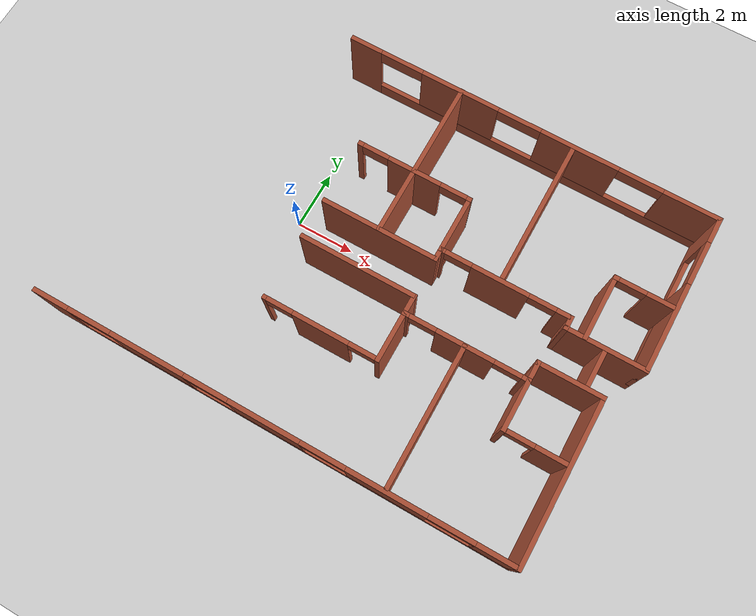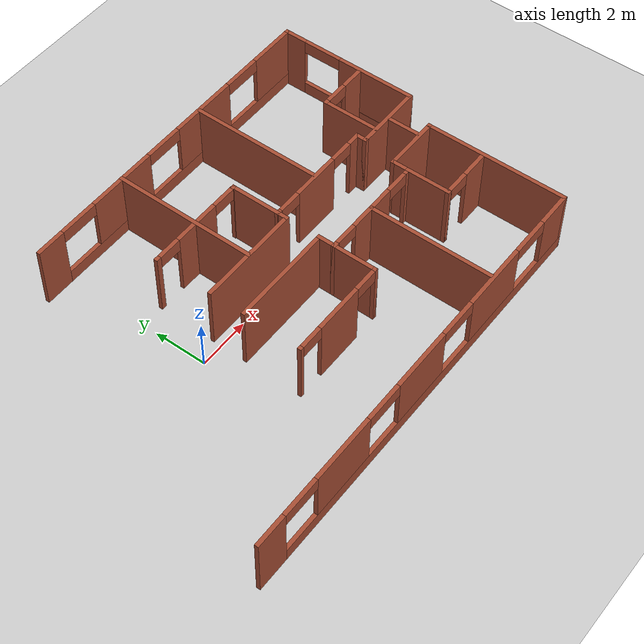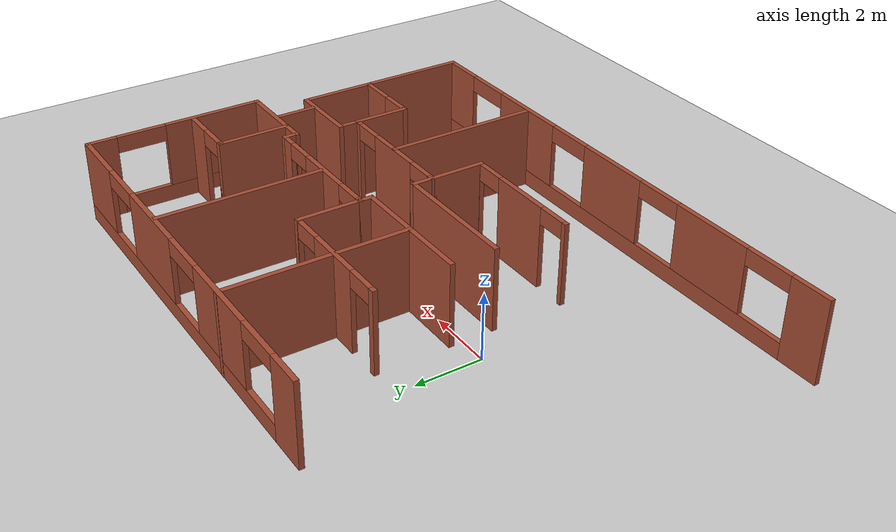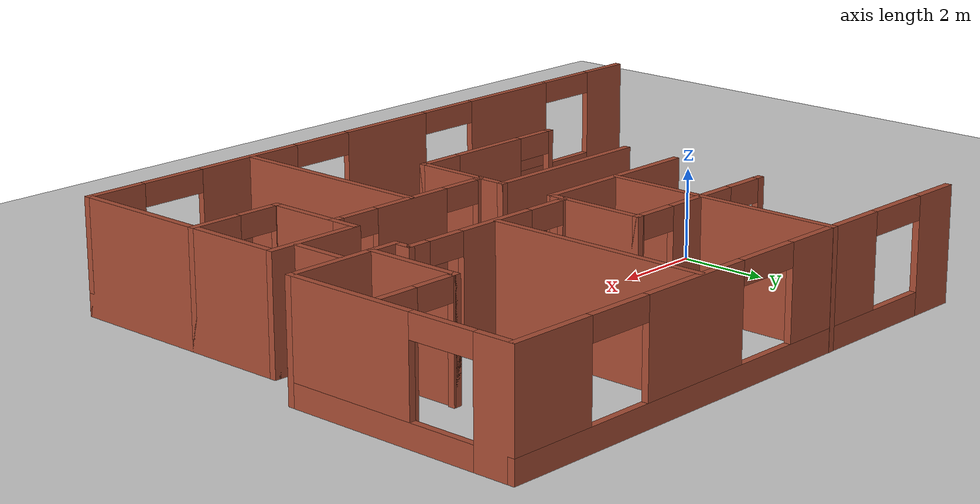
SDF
<sdf version="1.7">
 <world name="default">
  <model name="ground_plane">
   <static>1</static>
   <link name="link">
    <collision name="collision">
     <geometry><plane><normal>0 0 1</normal><size>100 100</size></plane></geometry>
     <surface><friction><ode><mu>100</mu><mu2>50</mu2></ode></friction></surface>
    </collision>
    <visual name="visual">
     <cast_shadows>0</cast_shadows>
     <geometry><plane><normal>0 0 1</normal><size>100 100</size></plane></geometry>
     <material>
      <script><uri>file://media/materials/scripts/gazebo.material</uri><name>Gazebo/Grey</name></script>
     </material>
    </visual>
   </link>
  </model>
  <model name="Apartments2">
   <pose>-0.710579 -0.305207 0 0 -0 0</pose>
   <link name="Wall_100">
    <collision name="Wall_100_Collision">
     <geometry><box><size>1.25 0.15 2.5</size></box></geometry>
     <pose>0 0 1.25 0 -0 0</pose>
    </collision>
    <visual name="Wall_100_Visual">
     <pose>0 0 1.25 0 -0 0</pose>
     <geometry><box><size>1.25 0.15 2.5</size></box></geometry>
     <material>
      <script><uri>file://media/materials/scripts/gazebo.material</uri><name>Gazebo/Bricks</name></script>
      <ambient>1 1 1 1</ambient>
     </material>
     <meta><layer>0</layer></meta>
    </visual>
    <pose>11.1408 -0.014942 0 0 -0 1.5708</pose>
   </link>
   <link name="Wall_17">
    <pose>3.65523 -6.01693 0 0 -0 0</pose>
    <visual name="Wall_17_Visual_0">
     <pose>-7.50207 0 1.25 0 -0 0</pose>
     <geometry><box><size>1.24587 0.15 2.5</size></box></geometry>
     <material>
      <script><uri>file://media/materials/scripts/gazebo.material</uri><name>Gazebo/Bricks</name></script>
      <ambient>1 1 1 1</ambient>
     </material>
     <meta><layer>0</layer></meta>
    </visual>
    <collision name="Wall_17_Collision_0">
     <geometry><box><size>1.24587 0.15 2.5</size></box></geometry>
     <pose>-7.50207 0 1.25 0 -0 0</pose>
    </collision>
    <visual name="Wall_17_Visual_1">
     <pose>0.622932 0 0.25 0 -0 0</pose>
     <geometry><box><size>15.0041 0.15 0.5</size></box></geometry>
     <material>
      <script><uri>file://media/materials/scripts/gazebo.material</uri><name>Gazebo/Bricks</name></script>
      <ambient>1 1 1 1</ambient>
     </material>
     <meta><layer>0</layer></meta>
    </visual>
    <collision name="Wall_17_Collision_1">
     <geometry><box><size>15.0041 0.15 0.5</size></box></geometry>
     <pose>0.622932 0 0.25 0 -0 0</pose>
    </collision>
    <visual name="Wall_17_Visual_2">
     <pose>-4.09785 0 1.5 0 -0 0</pose>
     <geometry><box><size>2.56257 0.15 2</size></box></geometry>
     <material>
      <script><uri>file://media/materials/scripts/gazebo.material</uri><name>Gazebo/Bricks</name></script>
      <ambient>1 1 1 1</ambient>
     </material>
     <meta><layer>0</layer></meta>
    </visual>
    <collision name="Wall_17_Collision_2">
     <geometry><box><size>2.56257 0.15 2</size></box></geometry>
     <pose>-4.09785 0 1.5 0 -0 0</pose>
    </collision>
    <visual name="Wall_17_Visual_3">
     <pose>-0.113307 0 1.5 0 -0 0</pose>
     <geometry><box><size>2.40652 0.15 2</size></box></geometry>
     <material>
      <script><uri>file://media/materials/scripts/gazebo.material</uri><name>Gazebo/Bricks</name></script>
      <ambient>1 1 1 1</ambient>
     </material>
     <meta><layer>0</layer></meta>
    </visual>
    <collision name="Wall_17_Collision_3">
     <geometry><box><size>2.40652 0.15 2</size></box></geometry>
     <pose>-0.113307 0 1.5 0 -0 0</pose>
    </collision>
    <visual name="Wall_17_Visual_4">
     <pose>3.90561 0 1.5 0 -0 0</pose>
     <geometry><box><size>2.63132 0.15 2</size></box></geometry>
     <material>
      <script><uri>file://media/materials/scripts/gazebo.material</uri><name>Gazebo/Bricks</name></script>
      <ambient>1 1 1 1</ambient>
     </material>
     <meta><layer>0</layer></meta>
    </visual>
    <collision name="Wall_17_Collision_4">
     <geometry><box><size>2.63132 0.15 2</size></box></geometry>
     <pose>3.90561 0 1.5 0 -0 0</pose>
    </collision>
    <visual name="Wall_17_Visual_5">
     <pose>7.42314 0 1.5 0 -0 0</pose>
     <geometry><box><size>1.40373 0.15 2</size></box></geometry>
     <material>
      <script><uri>file://media/materials/scripts/gazebo.material</uri><name>Gazebo/Bricks</name></script>
      <ambient>1 1 1 1</ambient>
     </material>
     <meta><layer>0</layer></meta>
    </visual>
    <collision name="Wall_17_Collision_5">
     <geometry><box><size>1.40373 0.15 2</size></box></geometry>
     <pose>7.42314 0 1.5 0 -0 0</pose>
    </collision>
    <visual name="Wall_17_Visual_6">
     <pose>-6.12913 0 2.25 0 -0 0</pose>
     <geometry><box><size>1.5 0.15 0.5</size></box></geometry>
     <material>
      <script><uri>file://media/materials/scripts/gazebo.material</uri><name>Gazebo/Bricks</name></script>
      <ambient>1 1 1 1</ambient>
     </material>
     <meta><layer>0</layer></meta>
    </visual>
    <collision name="Wall_17_Collision_6">
     <geometry><box><size>1.5 0.15 0.5</size></box></geometry>
     <pose>-6.12913 0 2.25 0 -0 0</pose>
    </collision>
    <visual name="Wall_17_Visual_7">
     <pose>-2.06656 0 2.25 0 -0 0</pose>
     <geometry><box><size>1.5 0.15 0.5</size></box></geometry>
     <material>
      <script><uri>file://media/materials/scripts/gazebo.material</uri><name>Gazebo/Bricks</name></script>
      <ambient>1 1 1 1</ambient>
     </material>
     <meta><layer>0</layer></meta>
    </visual>
    <collision name="Wall_17_Collision_7">
     <geometry><box><size>1.5 0.15 0.5</size></box></geometry>
     <pose>-2.06656 0 2.25 0 -0 0</pose>
    </collision>
    <visual name="Wall_17_Visual_8">
     <pose>1.83995 0 2.25 0 -0 0</pose>
     <geometry><box><size>1.5 0.15 0.5</size></box></geometry>
     <material>
      <script><uri>file://media/materials/scripts/gazebo.material</uri><name>Gazebo/Bricks</name></script>
      <ambient>1 1 1 1</ambient>
     </material>
     <meta><layer>0</layer></meta>
    </visual>
    <collision name="Wall_17_Collision_8">
     <geometry><box><size>1.5 0.15 0.5</size></box></geometry>
     <pose>1.83995 0 2.25 0 -0 0</pose>
    </collision>
    <visual name="Wall_17_Visual_9">
     <pose>5.97127 0 2.25 0 -0 0</pose>
     <geometry><box><size>1.5 0.15 0.5</size></box></geometry>
     <material>
      <script><uri>file://media/materials/scripts/gazebo.material</uri><name>Gazebo/Bricks</name></script>
      <ambient>1 1 1 1</ambient>
     </material>
     <meta><layer>0</layer></meta>
    </visual>
    <collision name="Wall_17_Collision_9">
     <geometry><box><size>1.5 0.15 0.5</size></box></geometry>
     <pose>5.97127 0 2.25 0 -0 0</pose>
    </collision>
   </link>
   <link name="Wall_18">
    <collision name="Wall_18_Collision">
     <geometry><box><size>5.5 0.15 2.5</size></box></geometry>
     <pose>0 0 1.25 0 -0 0</pose>
    </collision>
    <visual name="Wall_18_Visual">
     <pose>0 0 1.25 0 -0 0</pose>
     <geometry><box><size>5.5 0.15 2.5</size></box></geometry>
     <material>
      <script><uri>file://media/materials/scripts/gazebo.material</uri><name>Gazebo/Bricks</name></script>
      <ambient>1 1 1 1</ambient>
     </material>
     <meta><layer>0</layer></meta>
    </visual>
    <pose>11.7052 -3.34193 0 0 -0 1.5708</pose>
   </link>
   <link name="Wall_19">
    <collision name="Wall_19_Collision">
     <geometry><box><size>2.25 0.15 2.5</size></box></geometry>
     <pose>0 0 1.25 0 -0 0</pose>
    </collision>
    <visual name="Wall_19_Visual">
     <pose>0 0 1.25 0 -0 0</pose>
     <geometry><box><size>2.25 0.15 2.5</size></box></geometry>
     <material>
      <script><uri>file://media/materials/scripts/gazebo.material</uri><name>Gazebo/Bricks</name></script>
      <ambient>1 1 1 1</ambient>
     </material>
     <meta><layer>0</layer></meta>
    </visual>
    <pose>10.6552 -0.666927 0 0 -0 3.14159</pose>
   </link>
   <link name="Wall_20">
    <collision name="Wall_20_Collision">
     <geometry><box><size>0.75 0.15 2.5</size></box></geometry>
     <pose>0 0 1.25 0 -0 0</pose>
    </collision>
    <visual name="Wall_20_Visual">
     <pose>0 0 1.25 0 -0 0</pose>
     <geometry><box><size>0.75 0.15 2.5</size></box></geometry>
     <material>
      <script><uri>file://media/materials/scripts/gazebo.material</uri><name>Gazebo/Bricks</name></script>
      <ambient>1 1 1 1</ambient>
     </material>
     <meta><layer>0</layer></meta>
    </visual>
    <pose>9.60523 -0.966927 0 0 -0 -1.5708</pose>
   </link>
   <link name="Wall_21">
    <pose>7.55523 -1.26693 0 0 -0 3.14159</pose>
    <visual name="Wall_21_Visual_0">
     <pose>-1.97774 0 1.25 0 -0 0</pose>
     <geometry><box><size>0.294523 0.15 2.5</size></box></geometry>
     <material>
      <script><uri>file://media/materials/scripts/gazebo.material</uri><name>Gazebo/Bricks</name></script>
      <ambient>1 1 1 1</ambient>
     </material>
     <meta><layer>0</layer></meta>
    </visual>
    <collision name="Wall_21_Collision_0">
     <geometry><box><size>0.294523 0.15 2.5</size></box></geometry>
     <pose>-1.97774 0 1.25 0 -0 0</pose>
    </collision>
    <visual name="Wall_21_Visual_1">
     <pose>0.028428 0 1.25 0 -0 0</pose>
     <geometry><box><size>1.91781 0.15 2.5</size></box></geometry>
     <material>
      <script><uri>file://media/materials/scripts/gazebo.material</uri><name>Gazebo/Bricks</name></script>
      <ambient>1 1 1 1</ambient>
     </material>
     <meta><layer>0</layer></meta>
    </visual>
    <collision name="Wall_21_Collision_1">
     <geometry><box><size>1.91781 0.15 2.5</size></box></geometry>
     <pose>0.028428 0 1.25 0 -0 0</pose>
    </collision>
    <visual name="Wall_21_Visual_2">
     <pose>2.00617 0 1.25 0 -0 0</pose>
     <geometry><box><size>0.237667 0.15 2.5</size></box></geometry>
     <material>
      <script><uri>file://media/materials/scripts/gazebo.material</uri><name>Gazebo/Bricks</name></script>
      <ambient>1 1 1 1</ambient>
     </material>
     <meta><layer>0</layer></meta>
    </visual>
    <collision name="Wall_21_Collision_2">
     <geometry><box><size>0.237667 0.15 2.5</size></box></geometry>
     <pose>2.00617 0 1.25 0 -0 0</pose>
    </collision>
    <visual name="Wall_21_Visual_3">
     <pose>-1.38048 0 2.25 0 -0 0</pose>
     <geometry><box><size>0.9 0.15 0.5</size></box></geometry>
     <material>
      <script><uri>file://media/materials/scripts/gazebo.material</uri><name>Gazebo/Bricks</name></script>
      <ambient>1 1 1 1</ambient>
     </material>
     <meta><layer>0</layer></meta>
    </visual>
    <collision name="Wall_21_Collision_3">
     <geometry><box><size>0.9 0.15 0.5</size></box></geometry>
     <pose>-1.38048 0 2.25 0 -0 0</pose>
    </collision>
    <visual name="Wall_21_Visual_4">
     <pose>1.43733 0 2.25 0 -0 0</pose>
     <geometry><box><size>0.9 0.15 0.5</size></box></geometry>
     <material>
      <script><uri>file://media/materials/scripts/gazebo.material</uri><name>Gazebo/Bricks</name></script>
      <ambient>1 1 1 1</ambient>
     </material>
     <meta><layer>0</layer></meta>
    </visual>
    <collision name="Wall_21_Collision_4">
     <geometry><box><size>0.9 0.15 0.5</size></box></geometry>
     <pose>1.43733 0 2.25 0 -0 0</pose>
    </collision>
   </link>
   <link name="Wall_22">
    <collision name="Wall_22_Collision">
     <geometry><box><size>0.75 0.15 2.5</size></box></geometry>
     <pose>0 0 1.25 0 -0 0</pose>
    </collision>
    <visual name="Wall_22_Visual">
     <pose>0 0 1.25 0 -0 0</pose>
     <geometry><box><size>0.75 0.15 2.5</size></box></geometry>
     <material>
      <script><uri>file://media/materials/scripts/gazebo.material</uri><name>Gazebo/Bricks</name></script>
      <ambient>1 1 1 1</ambient>
     </material>
     <meta><layer>0</layer></meta>
    </visual>
    <pose>5.50523 -0.966927 0 0 -0 1.5708</pose>
   </link>
   <link name="Wall_23">
    <collision name="Wall_23_Collision">
     <geometry><box><size>4 0.15 2.5</size></box></geometry>
     <pose>0 0 1.25 0 -0 0</pose>
    </collision>
    <visual name="Wall_23_Visual">
     <pose>0 0 1.25 0 -0 0</pose>
     <geometry><box><size>4 0.15 2.5</size></box></geometry>
     <material>
      <script><uri>file://media/materials/scripts/gazebo.material</uri><name>Gazebo/Bricks</name></script>
      <ambient>1 1 1 1</ambient>
     </material>
     <meta><layer>0</layer></meta>
    </visual>
    <pose>3.58023 -0.666927 0 0 -0 3.14159</pose>
   </link>
   <link name="Wall_37">
    <collision name="Wall_37_Collision">
     <geometry><box><size>4.75 0.15 2.5</size></box></geometry>
     <pose>0 0 1.25 0 -0 0</pose>
    </collision>
    <visual name="Wall_37_Visual">
     <pose>0 0 1.25 0 -0 0</pose>
     <geometry><box><size>4.75 0.15 2.5</size></box></geometry>
     <material>
      <script><uri>file://media/materials/scripts/gazebo.material</uri><name>Gazebo/Bricks</name></script>
      <ambient>1 1 1 1</ambient>
     </material>
     <meta><layer>0</layer></meta>
    </visual>
    <pose>7.51283 -3.59878 0 0 -0 -1.5708</pose>
   </link>
   <link name="Wall_43">
    <collision name="Wall_43_Collision">
     <geometry><box><size>1.75 0.15 2.5</size></box></geometry>
     <pose>0 0 1.25 0 -0 0</pose>
    </collision>
    <visual name="Wall_43_Visual">
     <pose>0 0 1.25 0 -0 0</pose>
     <geometry><box><size>1.75 0.15 2.5</size></box></geometry>
     <material>
      <script><uri>file://media/materials/scripts/gazebo.material</uri><name>Gazebo/Bricks</name></script>
      <ambient>1 1 1 1</ambient>
     </material>
     <meta><layer>0</layer></meta>
    </visual>
    <pose>9.60523 -2.06693 0 0 -0 -1.5708</pose>
   </link>
   <link name="Wall_44">
    <pose>10.6552 -2.86693 0 0 -0 0</pose>
    <visual name="Wall_44_Visual_0">
     <pose>-1.04198 0 1.25 0 -0 0</pose>
     <geometry><box><size>0.166041 0.15 2.5</size></box></geometry>
     <material>
      <script><uri>file://media/materials/scripts/gazebo.material</uri><name>Gazebo/Bricks</name></script>
      <ambient>1 1 1 1</ambient>
     </material>
     <meta><layer>0</layer></meta>
    </visual>
    <collision name="Wall_44_Collision_0">
     <geometry><box><size>0.166041 0.15 2.5</size></box></geometry>
     <pose>-1.04198 0 1.25 0 -0 0</pose>
    </collision>
    <visual name="Wall_44_Visual_1">
     <pose>0.533021 0 1.25 0 -0 0</pose>
     <geometry><box><size>1.18396 0.15 2.5</size></box></geometry>
     <material>
      <script><uri>file://media/materials/scripts/gazebo.material</uri><name>Gazebo/Bricks</name></script>
      <ambient>1 1 1 1</ambient>
     </material>
     <meta><layer>0</layer></meta>
    </visual>
    <collision name="Wall_44_Collision_1">
     <geometry><box><size>1.18396 0.15 2.5</size></box></geometry>
     <pose>0.533021 0 1.25 0 -0 0</pose>
    </collision>
    <visual name="Wall_44_Visual_2">
     <pose>-0.508959 0 2.25 0 -0 0</pose>
     <geometry><box><size>0.9 0.15 0.5</size></box></geometry>
     <material>
      <script><uri>file://media/materials/scripts/gazebo.material</uri><name>Gazebo/Bricks</name></script>
      <ambient>1 1 1 1</ambient>
     </material>
     <meta><layer>0</layer></meta>
    </visual>
    <collision name="Wall_44_Collision_2">
     <geometry><box><size>0.9 0.15 0.5</size></box></geometry>
     <pose>-0.508959 0 2.25 0 -0 0</pose>
    </collision>
   </link>
   <link name="Wall_49">
    <pose>3.58023 -2.86693 0 0 -0 0</pose>
    <visual name="Wall_49_Visual_0">
     <pose>-1.92932 0 1.25 0 -0 0</pose>
     <geometry><box><size>0.141364 0.15 2.5</size></box></geometry>
     <material>
      <script><uri>file://media/materials/scripts/gazebo.material</uri><name>Gazebo/Bricks</name></script>
      <ambient>1 1 1 1</ambient>
     </material>
     <meta><layer>0</layer></meta>
    </visual>
    <collision name="Wall_49_Collision_0">
     <geometry><box><size>0.141364 0.15 2.5</size></box></geometry>
     <pose>-1.92932 0 1.25 0 -0 0</pose>
    </collision>
    <visual name="Wall_49_Visual_1">
     <pose>-0.00657 0 1.25 0 -0 0</pose>
     <geometry><box><size>1.90413 0.15 2.5</size></box></geometry>
     <material>
      <script><uri>file://media/materials/scripts/gazebo.material</uri><name>Gazebo/Bricks</name></script>
      <ambient>1 1 1 1</ambient>
     </material>
     <meta><layer>0</layer></meta>
    </visual>
    <collision name="Wall_49_Collision_1">
     <geometry><box><size>1.90413 0.15 2.5</size></box></geometry>
     <pose>-0.00657 0 1.25 0 -0 0</pose>
    </collision>
    <visual name="Wall_49_Visual_2">
     <pose>1.92275 0 1.25 0 -0 0</pose>
     <geometry><box><size>0.154504 0.15 2.5</size></box></geometry>
     <material>
      <script><uri>file://media/materials/scripts/gazebo.material</uri><name>Gazebo/Bricks</name></script>
      <ambient>1 1 1 1</ambient>
     </material>
     <meta><layer>0</layer></meta>
    </visual>
    <collision name="Wall_49_Collision_2">
     <geometry><box><size>0.154504 0.15 2.5</size></box></geometry>
     <pose>1.92275 0 1.25 0 -0 0</pose>
    </collision>
    <visual name="Wall_49_Visual_3">
     <pose>-1.40864 0 2.25 0 -0 0</pose>
     <geometry><box><size>0.9 0.15 0.5</size></box></geometry>
     <material>
      <script><uri>file://media/materials/scripts/gazebo.material</uri><name>Gazebo/Bricks</name></script>
      <ambient>1 1 1 1</ambient>
     </material>
     <meta><layer>0</layer></meta>
    </visual>
    <collision name="Wall_49_Collision_3">
     <geometry><box><size>0.9 0.15 0.5</size></box></geometry>
     <pose>-1.40864 0 2.25 0 -0 0</pose>
    </collision>
    <visual name="Wall_49_Visual_4">
     <pose>1.3955 0 2.25 0 -0 0</pose>
     <geometry><box><size>0.9 0.15 0.5</size></box></geometry>
     <material>
      <script><uri>file://media/materials/scripts/gazebo.material</uri><name>Gazebo/Bricks</name></script>
      <ambient>1 1 1 1</ambient>
     </material>
     <meta><layer>0</layer></meta>
    </visual>
    <collision name="Wall_49_Collision_4">
     <geometry><box><size>0.9 0.15 0.5</size></box></geometry>
     <pose>1.3955 0 2.25 0 -0 0</pose>
    </collision>
   </link>
   <link name="Wall_50">
    <collision name="Wall_50_Collision">
     <geometry><box><size>1.75 0.15 2.5</size></box></geometry>
     <pose>0 0 1.25 0 -0 0</pose>
    </collision>
    <visual name="Wall_50_Visual">
     <pose>0 0 1.25 0 -0 0</pose>
     <geometry><box><size>1.75 0.15 2.5</size></box></geometry>
     <material>
      <script><uri>file://media/materials/scripts/gazebo.material</uri><name>Gazebo/Bricks</name></script>
      <ambient>1 1 1 1</ambient>
     </material>
     <meta><layer>0</layer></meta>
    </visual>
    <pose>5.50523 -2.06693 0 0 -0 1.5708</pose>
   </link>
   <link name="Wall_64">
    <pose>6.025 6.01184 0 0 -0 0</pose>
    <visual name="Wall_64_Visual_0">
     <pose>-5.93413 0 1.25 0 -0 0</pose>
     <geometry><box><size>1.13175 0.15 2.5</size></box></geometry>
     <material>
      <script><uri>file://media/materials/scripts/gazebo.material</uri><name>Gazebo/Bricks</name></script>
      <ambient>1 1 1 1</ambient>
     </material>
     <meta><layer>0</layer></meta>
    </visual>
    <collision name="Wall_64_Collision_0">
     <geometry><box><size>1.13175 0.15 2.5</size></box></geometry>
     <pose>-5.93413 0 1.25 0 -0 0</pose>
    </collision>
    <visual name="Wall_64_Visual_1">
     <pose>0.565874 0 0.25 0 -0 0</pose>
     <geometry><box><size>11.8683 0.15 0.5</size></box></geometry>
     <material>
      <script><uri>file://media/materials/scripts/gazebo.material</uri><name>Gazebo/Bricks</name></script>
      <ambient>1 1 1 1</ambient>
     </material>
     <meta><layer>0</layer></meta>
    </visual>
    <collision name="Wall_64_Collision_1">
     <geometry><box><size>11.8683 0.15 0.5</size></box></geometry>
     <pose>0.565874 0 0.25 0 -0 0</pose>
    </collision>
    <visual name="Wall_64_Visual_2">
     <pose>-2.50426 0 1.5 0 -0 0</pose>
     <geometry><box><size>2.72799 0.15 2</size></box></geometry>
     <material>
      <script><uri>file://media/materials/scripts/gazebo.material</uri><name>Gazebo/Bricks</name></script>
      <ambient>1 1 1 1</ambient>
     </material>
     <meta><layer>0</layer></meta>
    </visual>
    <collision name="Wall_64_Collision_2">
     <geometry><box><size>2.72799 0.15 2</size></box></geometry>
     <pose>-2.50426 0 1.5 0 -0 0</pose>
    </collision>
    <visual name="Wall_64_Visual_3">
     <pose>1.70465 0 1.5 0 -0 0</pose>
     <geometry><box><size>2.68983 0.15 2</size></box></geometry>
     <material>
      <script><uri>file://media/materials/scripts/gazebo.material</uri><name>Gazebo/Bricks</name></script>
      <ambient>1 1 1 1</ambient>
     </material>
     <meta><layer>0</layer></meta>
    </visual>
    <collision name="Wall_64_Collision_3">
     <geometry><box><size>2.68983 0.15 2</size></box></geometry>
     <pose>1.70465 0 1.5 0 -0 0</pose>
    </collision>
    <visual name="Wall_64_Visual_4">
     <pose>5.52478 0 1.5 0 -0 0</pose>
     <geometry><box><size>1.95043 0.15 2</size></box></geometry>
     <material>
      <script><uri>file://media/materials/scripts/gazebo.material</uri><name>Gazebo/Bricks</name></script>
      <ambient>1 1 1 1</ambient>
     </material>
     <meta><layer>0</layer></meta>
    </visual>
    <collision name="Wall_64_Collision_4">
     <geometry><box><size>1.95043 0.15 2</size></box></geometry>
     <pose>5.52478 0 1.5 0 -0 0</pose>
    </collision>
    <visual name="Wall_64_Visual_5">
     <pose>-4.61825 0 2.25 0 -0 0</pose>
     <geometry><box><size>1.5 0.15 0.5</size></box></geometry>
     <material>
      <script><uri>file://media/materials/scripts/gazebo.material</uri><name>Gazebo/Bricks</name></script>
      <ambient>1 1 1 1</ambient>
     </material>
     <meta><layer>0</layer></meta>
    </visual>
    <collision name="Wall_64_Collision_5">
     <geometry><box><size>1.5 0.15 0.5</size></box></geometry>
     <pose>-4.61825 0 2.25 0 -0 0</pose>
    </collision>
    <visual name="Wall_64_Visual_6">
     <pose>-0.390264 0 2.25 0 -0 0</pose>
     <geometry><box><size>1.5 0.15 0.5</size></box></geometry>
     <material>
      <script><uri>file://media/materials/scripts/gazebo.material</uri><name>Gazebo/Bricks</name></script>
      <ambient>1 1 1 1</ambient>
     </material>
     <meta><layer>0</layer></meta>
    </visual>
    <collision name="Wall_64_Collision_6">
     <geometry><box><size>1.5 0.15 0.5</size></box></geometry>
     <pose>-0.390264 0 2.25 0 -0 0</pose>
    </collision>
    <visual name="Wall_64_Visual_7">
     <pose>3.79957 0 2.25 0 -0 0</pose>
     <geometry><box><size>1.5 0.15 0.5</size></box></geometry>
     <material>
      <script><uri>file://media/materials/scripts/gazebo.material</uri><name>Gazebo/Bricks</name></script>
      <ambient>1 1 1 1</ambient>
     </material>
     <meta><layer>0</layer></meta>
    </visual>
    <collision name="Wall_64_Collision_7">
     <geometry><box><size>1.5 0.15 0.5</size></box></geometry>
     <pose>3.79957 0 2.25 0 -0 0</pose>
    </collision>
   </link>
   <link name="Wall_65">
    <pose>12.45 3.33684 0 0 -0 -1.5708</pose>
    <visual name="Wall_65_Visual_0">
     <pose>-2.28766 0 1.25 0 -0 0</pose>
     <geometry><box><size>0.924672 0.15 2.5</size></box></geometry>
     <material>
      <script><uri>file://media/materials/scripts/gazebo.material</uri><name>Gazebo/Bricks</name></script>
      <ambient>1 1 1 1</ambient>
     </material>
     <meta><layer>0</layer></meta>
    </visual>
    <collision name="Wall_65_Collision_0">
     <geometry><box><size>0.924672 0.15 2.5</size></box></geometry>
     <pose>-2.28766 0 1.25 0 -0 0</pose>
    </collision>
    <visual name="Wall_65_Visual_1">
     <pose>0.462336 0 0.25 0 -0 0</pose>
     <geometry><box><size>4.57533 0.15 0.5</size></box></geometry>
     <material>
      <script><uri>file://media/materials/scripts/gazebo.material</uri><name>Gazebo/Bricks</name></script>
      <ambient>1 1 1 1</ambient>
     </material>
     <meta><layer>0</layer></meta>
    </visual>
    <collision name="Wall_65_Collision_1">
     <geometry><box><size>4.57533 0.15 0.5</size></box></geometry>
     <pose>0.462336 0 0.25 0 -0 0</pose>
    </collision>
    <visual name="Wall_65_Visual_2">
     <pose>1.21234 0 1.5 0 -0 0</pose>
     <geometry><box><size>3.07533 0.15 2</size></box></geometry>
     <material>
      <script><uri>file://media/materials/scripts/gazebo.material</uri><name>Gazebo/Bricks</name></script>
      <ambient>1 1 1 1</ambient>
     </material>
     <meta><layer>0</layer></meta>
    </visual>
    <collision name="Wall_65_Collision_2">
     <geometry><box><size>3.07533 0.15 2</size></box></geometry>
     <pose>1.21234 0 1.5 0 -0 0</pose>
    </collision>
    <visual name="Wall_65_Visual_3">
     <pose>-1.07533 0 2.25 0 -0 0</pose>
     <geometry><box><size>1.5 0.15 0.5</size></box></geometry>
     <material>
      <script><uri>file://media/materials/scripts/gazebo.material</uri><name>Gazebo/Bricks</name></script>
      <ambient>1 1 1 1</ambient>
     </material>
     <meta><layer>0</layer></meta>
    </visual>
    <collision name="Wall_65_Collision_3">
     <geometry><box><size>1.5 0.15 0.5</size></box></geometry>
     <pose>-1.07533 0 2.25 0 -0 0</pose>
    </collision>
   </link>
   <link name="Wall_66">
    <collision name="Wall_66_Collision">
     <geometry><box><size>2.75 0.15 2.5</size></box></geometry>
     <pose>0 0 1.25 0 -0 0</pose>
    </collision>
    <visual name="Wall_66_Visual">
     <pose>0 0 1.25 0 -0 0</pose>
     <geometry><box><size>2.75 0.15 2.5</size></box></geometry>
     <material>
      <script><uri>file://media/materials/scripts/gazebo.material</uri><name>Gazebo/Bricks</name></script>
      <ambient>1 1 1 1</ambient>
     </material>
     <meta><layer>0</layer></meta>
    </visual>
    <pose>11.15 0.661839 0 0 -0 3.14159</pose>
   </link>
   <link name="Wall_67">
    <collision name="Wall_67_Collision">
     <geometry><box><size>0.5 0.15 2.5</size></box></geometry>
     <pose>0 0 1.25 0 -0 0</pose>
    </collision>
    <visual name="Wall_67_Visual">
     <pose>0 0 1.25 0 -0 0</pose>
     <geometry><box><size>0.5 0.15 2.5</size></box></geometry>
     <material>
      <script><uri>file://media/materials/scripts/gazebo.material</uri><name>Gazebo/Bricks</name></script>
      <ambient>1 1 1 1</ambient>
     </material>
     <meta><layer>0</layer></meta>
    </visual>
    <pose>9.85 0.836839 0 0 -0 1.5708</pose>
   </link>
   <link name="Wall_68">
    <pose>7.675 1.01184 0 0 -0 3.14159</pose>
    <visual name="Wall_68_Visual_0">
     <pose>-1.97351 0 1.25 0 -0 0</pose>
     <geometry><box><size>0.552974 0.15 2.5</size></box></geometry>
     <material>
      <script><uri>file://media/materials/scripts/gazebo.material</uri><name>Gazebo/Bricks</name></script>
      <ambient>1 1 1 1</ambient>
     </material>
     <meta><layer>0</layer></meta>
    </visual>
    <collision name="Wall_68_Collision_0">
     <geometry><box><size>0.552974 0.15 2.5</size></box></geometry>
     <pose>-1.97351 0 1.25 0 -0 0</pose>
    </collision>
    <visual name="Wall_68_Visual_1">
     <pose>0.161879 0 1.25 0 -0 0</pose>
     <geometry><box><size>1.91781 0.15 2.5</size></box></geometry>
     <material>
      <script><uri>file://media/materials/scripts/gazebo.material</uri><name>Gazebo/Bricks</name></script>
      <ambient>1 1 1 1</ambient>
     </material>
     <meta><layer>0</layer></meta>
    </visual>
    <collision name="Wall_68_Collision_1">
     <geometry><box><size>1.91781 0.15 2.5</size></box></geometry>
     <pose>0.161879 0 1.25 0 -0 0</pose>
    </collision>
    <visual name="Wall_68_Visual_2">
     <pose>2.13539 0 1.25 0 -0 0</pose>
     <geometry><box><size>0.229216 0.15 2.5</size></box></geometry>
     <material>
      <script><uri>file://media/materials/scripts/gazebo.material</uri><name>Gazebo/Bricks</name></script>
      <ambient>1 1 1 1</ambient>
     </material>
     <meta><layer>0</layer></meta>
    </visual>
    <collision name="Wall_68_Collision_2">
     <geometry><box><size>0.229216 0.15 2.5</size></box></geometry>
     <pose>2.13539 0 1.25 0 -0 0</pose>
    </collision>
    <visual name="Wall_68_Visual_3">
     <pose>-1.24703 0 2.25 0 -0 0</pose>
     <geometry><box><size>0.9 0.15 0.5</size></box></geometry>
     <material>
      <script><uri>file://media/materials/scripts/gazebo.material</uri><name>Gazebo/Bricks</name></script>
      <ambient>1 1 1 1</ambient>
     </material>
     <meta><layer>0</layer></meta>
    </visual>
    <collision name="Wall_68_Collision_3">
     <geometry><box><size>0.9 0.15 0.5</size></box></geometry>
     <pose>-1.24703 0 2.25 0 -0 0</pose>
    </collision>
    <visual name="Wall_68_Visual_4">
     <pose>1.57078 0 2.25 0 -0 0</pose>
     <geometry><box><size>0.9 0.15 0.5</size></box></geometry>
     <material>
      <script><uri>file://media/materials/scripts/gazebo.material</uri><name>Gazebo/Bricks</name></script>
      <ambient>1 1 1 1</ambient>
     </material>
     <meta><layer>0</layer></meta>
    </visual>
    <collision name="Wall_68_Collision_4">
     <geometry><box><size>0.9 0.15 0.5</size></box></geometry>
     <pose>1.57078 0 2.25 0 -0 0</pose>
    </collision>
   </link>
   <link name="Wall_69">
    <collision name="Wall_69_Collision">
     <geometry><box><size>0.5 0.15 2.5</size></box></geometry>
     <pose>0 0 1.25 0 -0 0</pose>
    </collision>
    <visual name="Wall_69_Visual">
     <pose>0 0 1.25 0 -0 0</pose>
     <geometry><box><size>0.5 0.15 2.5</size></box></geometry>
     <material>
      <script><uri>file://media/materials/scripts/gazebo.material</uri><name>Gazebo/Bricks</name></script>
      <ambient>1 1 1 1</ambient>
     </material>
     <meta><layer>0</layer></meta>
    </visual>
    <pose>5.5 0.836839 0 0 -0 -1.5708</pose>
   </link>
   <link name="Wall_70">
    <collision name="Wall_70_Collision">
     <geometry><box><size>4 0.15 2.5</size></box></geometry>
     <pose>0 0 1.25 0 -0 0</pose>
    </collision>
    <visual name="Wall_70_Visual">
     <pose>0 0 1.25 0 -0 0</pose>
     <geometry><box><size>4 0.15 2.5</size></box></geometry>
     <material>
      <script><uri>file://media/materials/scripts/gazebo.material</uri><name>Gazebo/Bricks</name></script>
      <ambient>1 1 1 1</ambient>
     </material>
     <meta><layer>0</layer></meta>
    </visual>
    <pose>3.575 0.661839 0 0 -0 3.14159</pose>
   </link>
   <link name="Wall_87">
    <collision name="Wall_87_Collision">
     <geometry><box><size>2 0.15 2.5</size></box></geometry>
     <pose>0 0 1.25 0 -0 0</pose>
    </collision>
    <visual name="Wall_87_Visual">
     <pose>0 0 1.25 0 -0 0</pose>
     <geometry><box><size>2 0.15 2.5</size></box></geometry>
     <material>
      <script><uri>file://media/materials/scripts/gazebo.material</uri><name>Gazebo/Bricks</name></script>
      <ambient>1 1 1 1</ambient>
     </material>
     <meta><layer>0</layer></meta>
    </visual>
    <pose>5.5 1.93684 0 0 -0 1.5708</pose>
   </link>
   <link name="Wall_88">
    <pose>3.575 2.86184 0 0 -0 3.14159</pose>
    <visual name="Wall_88_Visual_0">
     <pose>-1.91168 0 1.25 0 -0 0</pose>
     <geometry><box><size>0.176633 0.15 2.5</size></box></geometry>
     <material>
      <script><uri>file://media/materials/scripts/gazebo.material</uri><name>Gazebo/Bricks</name></script>
      <ambient>1 1 1 1</ambient>
     </material>
     <meta><layer>0</layer></meta>
    </visual>
    <collision name="Wall_88_Collision_0">
     <geometry><box><size>0.176633 0.15 2.5</size></box></geometry>
     <pose>-1.91168 0 1.25 0 -0 0</pose>
    </collision>
    <visual name="Wall_88_Visual_1">
     <pose>-0.008917 0 1.25 0 -0 0</pose>
     <geometry><box><size>1.8289 0.15 2.5</size></box></geometry>
     <material>
      <script><uri>file://media/materials/scripts/gazebo.material</uri><name>Gazebo/Bricks</name></script>
      <ambient>1 1 1 1</ambient>
     </material>
     <meta><layer>0</layer></meta>
    </visual>
    <collision name="Wall_88_Collision_1">
     <geometry><box><size>1.8289 0.15 2.5</size></box></geometry>
     <pose>-0.008917 0 1.25 0 -0 0</pose>
    </collision>
    <visual name="Wall_88_Visual_2">
     <pose>1.90277 0 1.25 0 -0 0</pose>
     <geometry><box><size>0.194468 0.15 2.5</size></box></geometry>
     <material>
      <script><uri>file://media/materials/scripts/gazebo.material</uri><name>Gazebo/Bricks</name></script>
      <ambient>1 1 1 1</ambient>
     </material>
     <meta><layer>0</layer></meta>
    </visual>
    <collision name="Wall_88_Collision_2">
     <geometry><box><size>0.194468 0.15 2.5</size></box></geometry>
     <pose>1.90277 0 1.25 0 -0 0</pose>
    </collision>
    <visual name="Wall_88_Visual_3">
     <pose>-1.37337 0 2.25 0 -0 0</pose>
     <geometry><box><size>0.9 0.15 0.5</size></box></geometry>
     <material>
      <script><uri>file://media/materials/scripts/gazebo.material</uri><name>Gazebo/Bricks</name></script>
      <ambient>1 1 1 1</ambient>
     </material>
     <meta><layer>0</layer></meta>
    </visual>
    <collision name="Wall_88_Collision_3">
     <geometry><box><size>0.9 0.15 0.5</size></box></geometry>
     <pose>-1.37337 0 2.25 0 -0 0</pose>
    </collision>
    <visual name="Wall_88_Visual_4">
     <pose>1.35553 0 2.25 0 -0 0</pose>
     <geometry><box><size>0.9 0.15 0.5</size></box></geometry>
     <material>
      <script><uri>file://media/materials/scripts/gazebo.material</uri><name>Gazebo/Bricks</name></script>
      <ambient>1 1 1 1</ambient>
     </material>
     <meta><layer>0</layer></meta>
    </visual>
    <collision name="Wall_88_Collision_4">
     <geometry><box><size>0.9 0.15 0.5</size></box></geometry>
     <pose>1.35553 0 2.25 0 -0 0</pose>
    </collision>
   </link>
   <link name="Wall_91">
    <collision name="Wall_91_Collision">
     <geometry><box><size>5.5 0.15 2.5</size></box></geometry>
     <pose>0 0 1.25 0 -0 0</pose>
    </collision>
    <visual name="Wall_91_Visual">
     <pose>0 0 1.25 0 -0 0</pose>
     <geometry><box><size>5.5 0.15 2.5</size></box></geometry>
     <material>
      <script><uri>file://media/materials/scripts/gazebo.material</uri><name>Gazebo/Bricks</name></script>
      <ambient>1 1 1 1</ambient>
     </material>
     <meta><layer>0</layer></meta>
    </visual>
    <pose>3.55599 3.34257 0 0 -0 -1.5708</pose>
   </link>
   <link name="Wall_93">
    <collision name="Wall_93_Collision">
     <geometry><box><size>5 0.15 2.5</size></box></geometry>
     <pose>0 0 1.25 0 -0 0</pose>
    </collision>
    <visual name="Wall_93_Visual">
     <pose>0 0 1.25 0 -0 0</pose>
     <geometry><box><size>5 0.15 2.5</size></box></geometry>
     <material>
      <script><uri>file://media/materials/scripts/gazebo.material</uri><name>Gazebo/Bricks</name></script>
      <ambient>1 1 1 1</ambient>
     </material>
     <meta><layer>0</layer></meta>
    </visual>
    <pose>7.52423 3.53611 0 0 -0 -1.5708</pose>
   </link>
   <link name="Wall_95">
    <collision name="Wall_95_Collision">
     <geometry><box><size>2.25 0.15 2.5</size></box></geometry>
     <pose>0 0 1.25 0 -0 0</pose>
    </collision>
    <visual name="Wall_95_Visual">
     <pose>0 0 1.25 0 -0 0</pose>
     <geometry><box><size>2.25 0.15 2.5</size></box></geometry>
     <material>
      <script><uri>file://media/materials/scripts/gazebo.material</uri><name>Gazebo/Bricks</name></script>
      <ambient>1 1 1 1</ambient>
     </material>
     <meta><layer>0</layer></meta>
    </visual>
    <pose>10.4682 1.72819 0 0 -0 1.5708</pose>
   </link>
   <link name="Wall_96">
    <pose>11.3932 2.77819 0 0 -0 0</pose>
    <visual name="Wall_96_Visual_0">
     <pose>-0.903884 0 1.25 0 -0 0</pose>
     <geometry><box><size>0.192233 0.15 2.5</size></box></geometry>
     <material>
      <script><uri>file://media/materials/scripts/gazebo.material</uri><name>Gazebo/Bricks</name></script>
      <ambient>1 1 1 1</ambient>
     </material>
     <meta><layer>0</layer></meta>
    </visual>
    <collision name="Wall_96_Collision_0">
     <geometry><box><size>0.192233 0.15 2.5</size></box></geometry>
     <pose>-0.903884 0 1.25 0 -0 0</pose>
    </collision>
    <visual name="Wall_96_Visual_1">
     <pose>0.546116 0 1.25 0 -0 0</pose>
     <geometry><box><size>0.907767 0.15 2.5</size></box></geometry>
     <material>
      <script><uri>file://media/materials/scripts/gazebo.material</uri><name>Gazebo/Bricks</name></script>
      <ambient>1 1 1 1</ambient>
     </material>
     <meta><layer>0</layer></meta>
    </visual>
    <collision name="Wall_96_Collision_1">
     <geometry><box><size>0.907767 0.15 2.5</size></box></geometry>
     <pose>0.546116 0 1.25 0 -0 0</pose>
    </collision>
    <visual name="Wall_96_Visual_2">
     <pose>-0.357767 0 2.25 0 -0 0</pose>
     <geometry><box><size>0.9 0.15 0.5</size></box></geometry>
     <material>
      <script><uri>file://media/materials/scripts/gazebo.material</uri><name>Gazebo/Bricks</name></script>
      <ambient>1 1 1 1</ambient>
     </material>
     <meta><layer>0</layer></meta>
    </visual>
    <collision name="Wall_96_Collision_2">
     <geometry><box><size>0.9 0.15 0.5</size></box></geometry>
     <pose>-0.357767 0 2.25 0 -0 0</pose>
    </collision>
   </link>
   <static>1</static>
  </model>
 </world>
</sdf>
